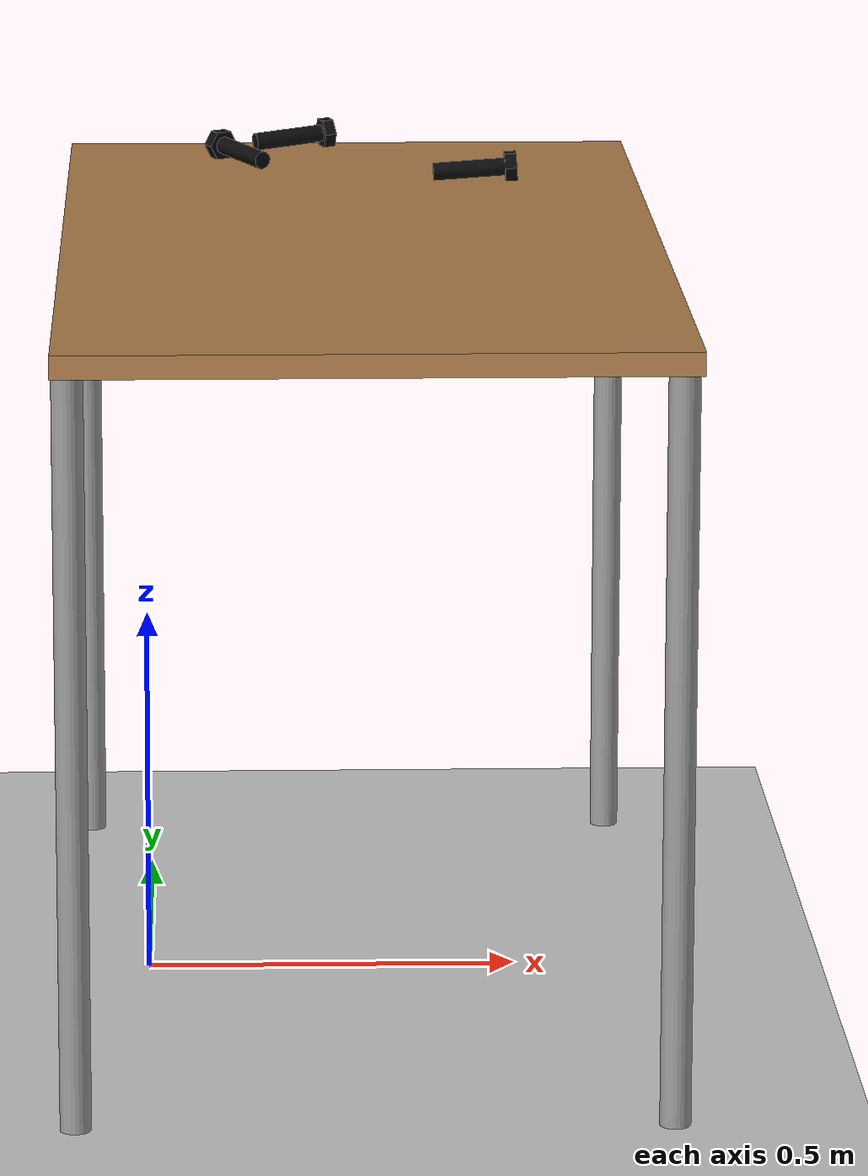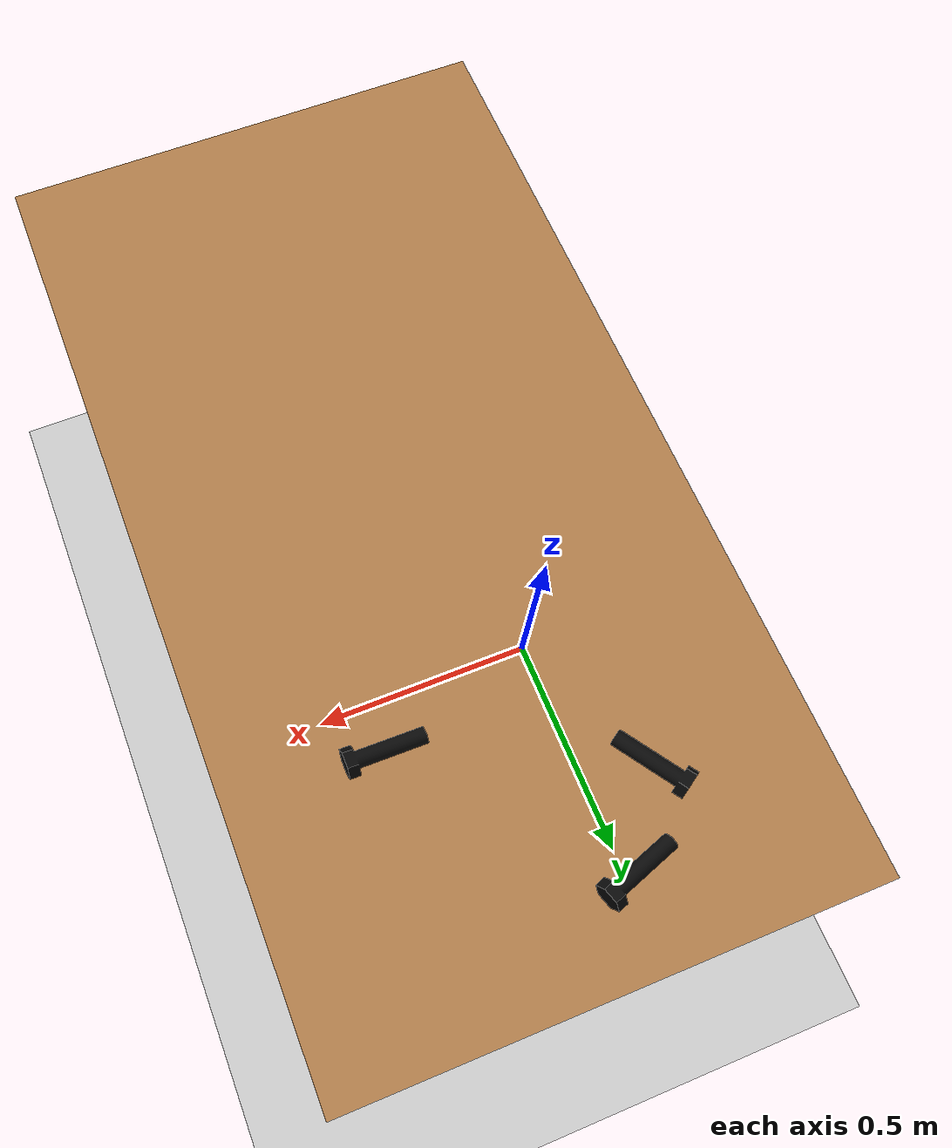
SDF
<?xml version="1.0" ?>
<sdf version="1.6">
  <world name="arm_and_table">
    <scene>
      <shadows>0</shadows>
    </scene>

    <gui>
      <camera name="user_camera">
        <pose>0.75 -0.75 1.4 0 0.29 2.21</pose>
      </camera>
    </gui>

    <include>
      <uri>model://sun</uri>
    </include>

    <model name="table">
      <static>true</static>
      <include>
        <uri>model://table</uri>
      </include>
      <pose>0.29 0 0 0 0 1.5708</pose>
    </model>

    <model name="bolt1">
      <include>
        <uri>model://bolt</uri>
      </include>
      <pose>0.5 0.35 1.05 0 1.5 0</pose>
    </model>

    <model name="bolt2">
      <include>
        <uri>model://bolt</uri>
      </include>
      <pose>0.25 0.63 1.05 0 -1.5 -2.82</pose>
    </model>

    <model name="bolt3">
      <include>
        <uri>model://bolt</uri>
      </include>
      <pose>0.11 0.53 1.05 0 -1.5 -1.0</pose>
    </model>

    <model name="ground_plane">
      <static>true</static>
      <include>
        <uri>model://ground_plane</uri>
      </include>
    </model>
  </world>
</sdf>

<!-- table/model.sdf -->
<sdf version="1.5">
  <model name="table">
    <static>true</static>
    <link name="link">
      <collision name="surface">
        <pose>0 0 1.0 0 0 0</pose>
        <geometry>
          <box>
            <size>1.5 0.8 0.03</size>
          </box>
        </geometry>
        <surface>
          <friction>
            <ode>
              <mu>0.6</mu>
              <mu2>0.6</mu2>
            </ode>
          </friction>
        </surface>
      </collision>
      <visual name="visual1">
        <pose>0 0 1.0 0 0 0</pose>
        <geometry>
          <box>
            <size>1.5 0.8 0.03</size>
          </box>
        </geometry>
        <material>
          <script>
            <uri>file://media/materials/scripts/gazebo.material</uri>
            <name>Gazebo/Wood</name>
          </script>
        </material>
      </visual>
      <collision name="front_left_leg">
        <pose>0.68 0.38 0.5 0 0 0</pose>
        <geometry>
          <cylinder>
            <radius>0.02</radius>
            <length>1.0</length>
          </cylinder>
        </geometry>
      </collision>
      <visual name="front_left_leg">
        <pose>0.68 0.38 0.5 0 0 0</pose>
        <geometry>
          <cylinder>
            <radius>0.02</radius>
            <length>1.0</length>
          </cylinder>
        </geometry>
        <material>
          <script>
            <uri>file://media/materials/scripts/gazebo.material</uri>
            <name>Gazebo/Grey</name>
          </script>
        </material>
      </visual>
      <collision name="front_right_leg">
        <pose>0.68 -0.38 0.5 0 0 0</pose>
        <geometry>
          <cylinder>
            <radius>0.02</radius>
            <length>1.0</length>
          </cylinder>
        </geometry>
      </collision>
      <visual name="front_right_leg">
        <pose>0.68 -0.38 0.5 0 0 0</pose>
        <geometry>
          <cylinder>
            <radius>0.02</radius>
            <length>1.0</length>
          </cylinder>
        </geometry>
        <material>
          <script>
            <uri>file://media/materials/scripts/gazebo.material</uri>
            <name>Gazebo/Grey</name>
          </script>
        </material>
      </visual>
      <collision name="back_right_leg">
        <pose>-0.68 -0.38 0.5 0 0 0</pose>
        <geometry>
          <cylinder>
            <radius>0.02</radius>
            <length>1.0</length>
          </cylinder>
        </geometry>
      </collision>
      <visual name="back_right_leg">
        <pose>-0.68 -0.38 0.5 0 0 0</pose>
        <geometry>
          <cylinder>
            <radius>0.02</radius>
            <length>1.0</length>
          </cylinder>
        </geometry>
        <material>
          <script>
            <uri>file://media/materials/scripts/gazebo.material</uri>
            <name>Gazebo/Grey</name>
          </script>
        </material>
      </visual>
      <collision name="back_left_leg">
        <pose>-0.68 0.38 0.5 0 0 0</pose>
        <geometry>
          <cylinder>
            <radius>0.02</radius>
            <length>1.0</length>
          </cylinder>
        </geometry>
      </collision>
      <visual name="back_left_leg">
        <pose>-0.68 0.38 0.5 0 0 0</pose>
        <geometry>
          <cylinder>
            <radius>0.02</radius>
            <length>1.0</length>
          </cylinder>
        </geometry>
        <material>
          <script>
            <uri>file://media/materials/scripts/gazebo.material</uri>
            <name>Gazebo/Grey</name>
          </script>
        </material>
      </visual>
    </link>
  </model>
</sdf>

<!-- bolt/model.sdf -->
<sdf version="1.6">
  <model name="bolt">
    <static>false</static>
    <link name="link">
      <inertial>
        <mass>0.064</mass>
        <inertia>
          <ixx>0.000021715</ixx>
          <ixy>0</ixy>
          <ixz>0</ixz>
          <iyy>0.000021715</iyy>
          <iyz>0</iyz>
          <izz>0.00000178</izz>
        </inertia>
        <pose>0 0 0 0 0 0</pose>
      </inertial>
      <collision name="collision">
        <geometry>
          <mesh>
            <scale>1 1 1</scale>
            <uri>model://bolt/meshes/bolt.stl</uri>
          </mesh>
        </geometry>
        <surface>
          <bounce>
            <restitution_coefficient>0</restitution_coefficient>
            <threshold>0.01</threshold>
          </bounce>
          <friction>
            <ode>
              <mu>1.2</mu>
              <mu2>1.2</mu2>
            </ode>
          </friction>
        </surface>
      </collision>
      <visual name="visual">
        <geometry>
          <mesh>
            <scale>1 1 1</scale>
            <uri>model://bolt/meshes/bolt.dae</uri>
          </mesh>
        </geometry>
      </visual>
    </link>
  </model>
</sdf>
